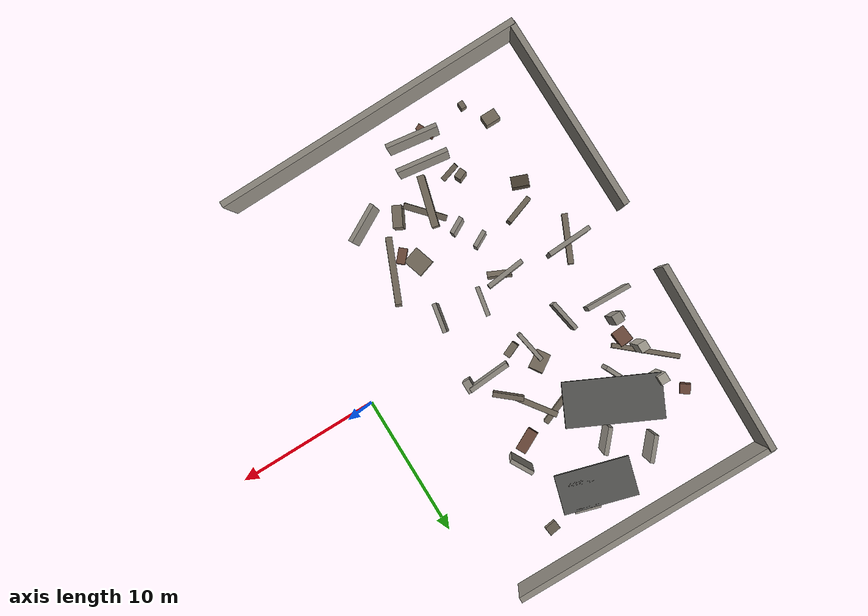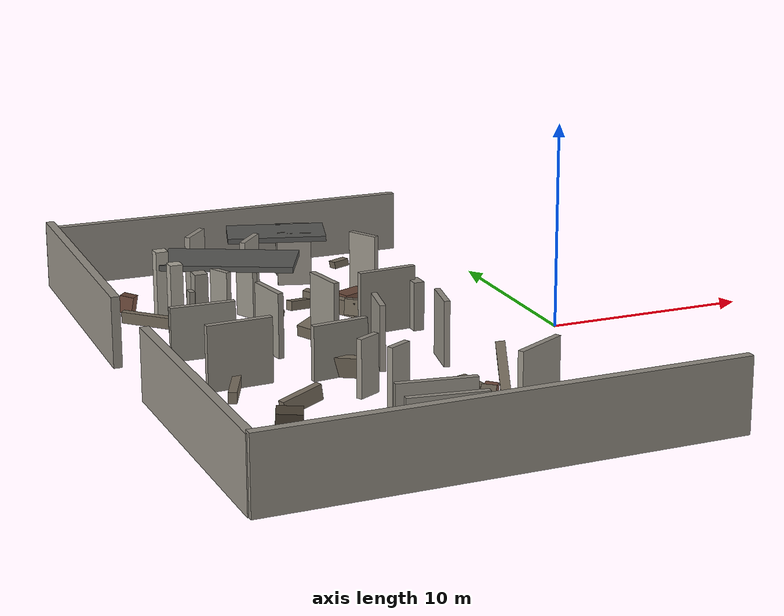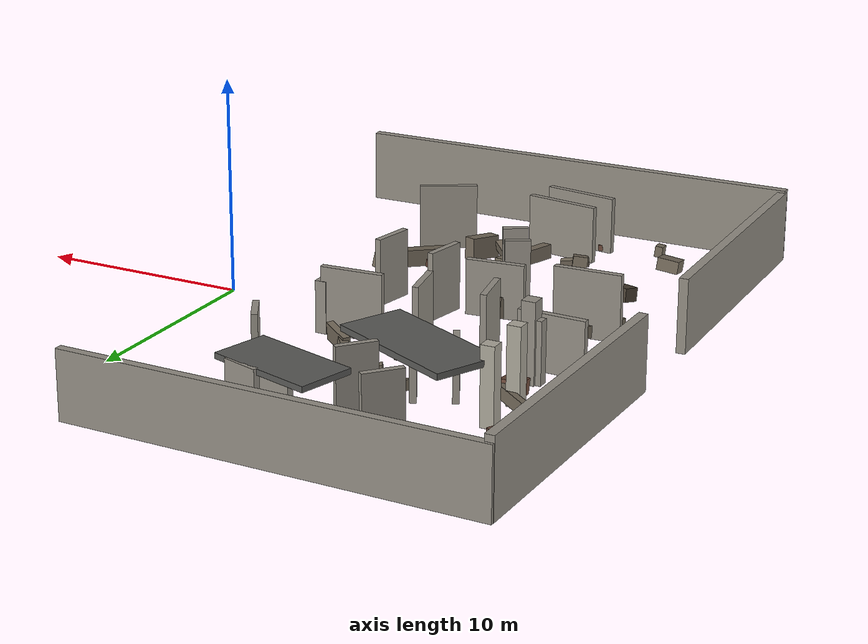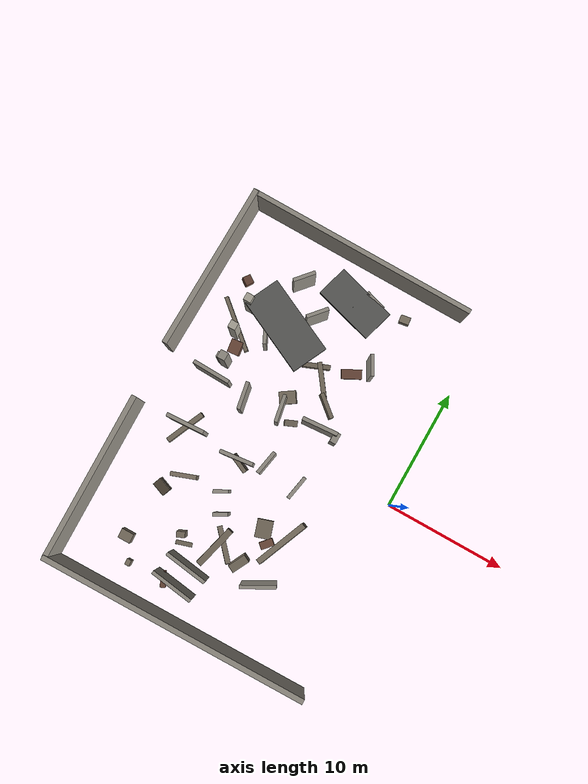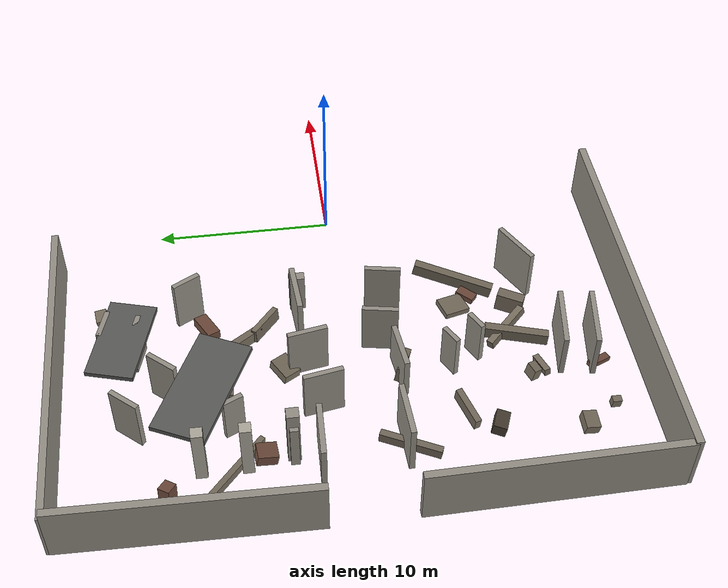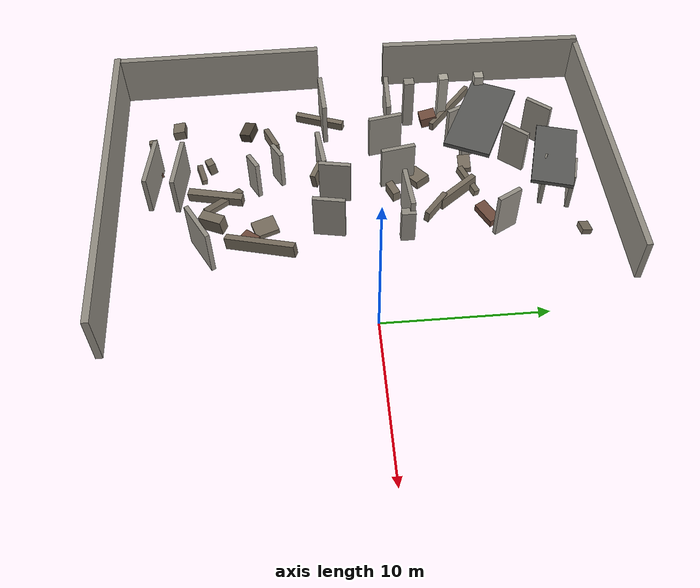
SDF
<sdf version="1.6">
 <model name="ruins_urban_01_medium">
  <static>true</static>
  <link name="001_north_boundary_west">
   <pose>-11.50000 15.85000 1.55000 0.00000 0.00000 -0.01000</pose>
   <visual name="visual">
    <geometry><box><size>19.00000 0.38000 3.10000</size></box></geometry>
    <material>
     <ambient>0.580 0.560 0.520 1</ambient>
     <diffuse>0.580 0.560 0.520 1</diffuse>
     <specular>0.03 0.03 0.03 1</specular>
    </material>
   </visual>
   <collision name="collision">
    <geometry><box><size>19.00000 0.38000 3.10000</size></box></geometry>
    <surface>
     <contact><collide_bitmask>0x01</collide_bitmask></contact>
     <friction><ode><mu>1.0</mu><mu2>1.0</mu2></ode></friction>
    </surface>
   </collision>
  </link>
  <link name="003_south_boundary_west">
   <pose>-10.00000 -15.90000 1.75000 0.00000 0.00000 0.01200</pose>
   <visual name="visual">
    <geometry><box><size>22.00000 0.42000 3.50000</size></box></geometry>
    <material>
     <ambient>0.580 0.560 0.520 1</ambient>
     <diffuse>0.580 0.560 0.520 1</diffuse>
     <specular>0.03 0.03 0.03 1</specular>
    </material>
   </visual>
   <collision name="collision">
    <geometry><box><size>22.00000 0.42000 3.50000</size></box></geometry>
    <surface>
     <contact><collide_bitmask>0x01</collide_bitmask></contact>
     <friction><ode><mu>1.0</mu><mu2>1.0</mu2></ode></friction>
    </surface>
   </collision>
  </link>
  <link name="005_west_boundary_north">
   <pose>-20.95000 9.15000 1.70000 0.00000 0.00000 -0.02000</pose>
   <visual name="visual">
    <geometry><box><size>0.42000 13.70000 3.40000</size></box></geometry>
    <material>
     <ambient>0.580 0.560 0.520 1</ambient>
     <diffuse>0.580 0.560 0.520 1</diffuse>
     <specular>0.03 0.03 0.03 1</specular>
    </material>
   </visual>
   <collision name="collision">
    <geometry><box><size>0.42000 13.70000 3.40000</size></box></geometry>
    <surface>
     <contact><collide_bitmask>0x01</collide_bitmask></contact>
     <friction><ode><mu>1.0</mu><mu2>1.0</mu2></ode></friction>
    </surface>
   </collision>
  </link>
  <link name="006_west_boundary_south">
   <pose>-20.95000 -9.15000 1.70000 0.00000 0.00000 0.01500</pose>
   <visual name="visual">
    <geometry><box><size>0.42000 13.70000 3.40000</size></box></geometry>
    <material>
     <ambient>0.580 0.560 0.520 1</ambient>
     <diffuse>0.580 0.560 0.520 1</diffuse>
     <specular>0.03 0.03 0.03 1</specular>
    </material>
   </visual>
   <collision name="collision">
    <geometry><box><size>0.42000 13.70000 3.40000</size></box></geometry>
    <surface>
     <contact><collide_bitmask>0x01</collide_bitmask></contact>
     <friction><ode><mu>1.0</mu><mu2>1.0</mu2></ode></friction>
    </surface>
   </collision>
  </link>
  <link name="008_ground_corridor_g2_n1_left">
   <pose>-13.96680 1.73807 1.57500 0.00000 0.00000 1.74751</pose>
   <visual name="visual">
    <geometry><box><size>2.18859 0.28000 3.15000</size></box></geometry>
    <material>
     <ambient>0.580 0.560 0.520 1</ambient>
     <diffuse>0.580 0.560 0.520 1</diffuse>
     <specular>0.03 0.03 0.03 1</specular>
    </material>
   </visual>
   <collision name="collision">
    <geometry><box><size>2.18859 0.28000 3.15000</size></box></geometry>
    <surface>
     <contact><collide_bitmask>0x01</collide_bitmask></contact>
     <friction><ode><mu>1.0</mu><mu2>1.0</mu2></ode></friction>
    </surface>
   </collision>
  </link>
  <link name="009_ground_corridor_g2_n1_right">
   <pose>-11.03320 2.26193 1.57500 0.00000 0.00000 1.74751</pose>
   <visual name="visual">
    <geometry><box><size>2.18859 0.28000 3.15000</size></box></geometry>
    <material>
     <ambient>0.580 0.560 0.520 1</ambient>
     <diffuse>0.580 0.560 0.520 1</diffuse>
     <specular>0.03 0.03 0.03 1</specular>
    </material>
   </visual>
   <collision name="collision">
    <geometry><box><size>2.18859 0.28000 3.15000</size></box></geometry>
    <surface>
     <contact><collide_bitmask>0x01</collide_bitmask></contact>
     <friction><ode><mu>1.0</mu><mu2>1.0</mu2></ode></friction>
    </surface>
   </collision>
  </link>
  <link name="010_ground_corridor_n1_n2_left">
   <pose>-14.78097 6.52811 1.37500 0.00000 0.00000 2.01522</pose>
   <visual name="visual">
    <geometry><box><size>1.15188 0.28000 2.75000</size></box></geometry>
    <material>
     <ambient>0.580 0.560 0.520 1</ambient>
     <diffuse>0.580 0.560 0.520 1</diffuse>
     <specular>0.03 0.03 0.03 1</specular>
    </material>
   </visual>
   <collision name="collision">
    <geometry><box><size>1.15188 0.28000 2.75000</size></box></geometry>
    <surface>
     <contact><collide_bitmask>0x01</collide_bitmask></contact>
     <friction><ode><mu>1.0</mu><mu2>1.0</mu2></ode></friction>
    </surface>
   </collision>
  </link>
  <link name="011_ground_corridor_n1_n2_right">
   <pose>-13.21903 7.27189 1.37500 0.00000 0.00000 2.01522</pose>
   <visual name="visual">
    <geometry><box><size>1.15188 0.28000 2.75000</size></box></geometry>
    <material>
     <ambient>0.580 0.560 0.520 1</ambient>
     <diffuse>0.580 0.560 0.520 1</diffuse>
     <specular>0.03 0.03 0.03 1</specular>
    </material>
   </visual>
   <collision name="collision">
    <geometry><box><size>1.15188 0.28000 2.75000</size></box></geometry>
    <surface>
     <contact><collide_bitmask>0x01</collide_bitmask></contact>
     <friction><ode><mu>1.0</mu><mu2>1.0</mu2></ode></friction>
    </surface>
   </collision>
  </link>
  <link name="012_ground_corridor_n2_n3_left">
   <pose>-14.37134 11.98117 1.57500 0.00000 0.00000 0.85197</pose>
   <visual name="visual">
    <geometry><box><size>1.81507 0.28000 3.15000</size></box></geometry>
    <material>
     <ambient>0.580 0.560 0.520 1</ambient>
     <diffuse>0.580 0.560 0.520 1</diffuse>
     <specular>0.03 0.03 0.03 1</specular>
    </material>
   </visual>
   <collision name="collision">
    <geometry><box><size>1.81507 0.28000 3.15000</size></box></geometry>
    <surface>
     <contact><collide_bitmask>0x01</collide_bitmask></contact>
     <friction><ode><mu>1.0</mu><mu2>1.0</mu2></ode></friction>
    </surface>
   </collision>
  </link>
  <link name="013_ground_corridor_n2_n3_right">
   <pose>-12.12866 10.01883 1.57500 0.00000 0.00000 0.85197</pose>
   <visual name="visual">
    <geometry><box><size>1.81507 0.28000 3.15000</size></box></geometry>
    <material>
     <ambient>0.580 0.560 0.520 1</ambient>
     <diffuse>0.580 0.560 0.520 1</diffuse>
     <specular>0.03 0.03 0.03 1</specular>
    </material>
   </visual>
   <collision name="collision">
    <geometry><box><size>1.81507 0.28000 3.15000</size></box></geometry>
    <surface>
     <contact><collide_bitmask>0x01</collide_bitmask></contact>
     <friction><ode><mu>1.0</mu><mu2>1.0</mu2></ode></friction>
    </surface>
   </collision>
  </link>
  <link name="014_ground_corridor_n3_n4_left">
   <pose>-8.75144 13.07852 1.37500 0.00000 0.00000 -0.29146</pose>
   <visual name="visual">
    <geometry><box><size>1.72015 0.28000 2.75000</size></box></geometry>
    <material>
     <ambient>0.580 0.560 0.520 1</ambient>
     <diffuse>0.580 0.560 0.520 1</diffuse>
     <specular>0.03 0.03 0.03 1</specular>
    </material>
   </visual>
   <collision name="collision">
    <geometry><box><size>1.72015 0.28000 2.75000</size></box></geometry>
    <surface>
     <contact><collide_bitmask>0x01</collide_bitmask></contact>
     <friction><ode><mu>1.0</mu><mu2>1.0</mu2></ode></friction>
    </surface>
   </collision>
  </link>
  <link name="015_ground_corridor_n3_n4_right">
   <pose>-9.24856 11.42148 1.37500 0.00000 0.00000 -0.29146</pose>
   <visual name="visual">
    <geometry><box><size>1.72015 0.28000 2.75000</size></box></geometry>
    <material>
     <ambient>0.580 0.560 0.520 1</ambient>
     <diffuse>0.580 0.560 0.520 1</diffuse>
     <specular>0.03 0.03 0.03 1</specular>
    </material>
   </visual>
   <collision name="collision">
    <geometry><box><size>1.72015 0.28000 2.75000</size></box></geometry>
    <surface>
     <contact><collide_bitmask>0x01</collide_bitmask></contact>
     <friction><ode><mu>1.0</mu><mu2>1.0</mu2></ode></friction>
    </surface>
   </collision>
  </link>
  <link name="017_ground_corridor_n4_n5_right">
   <pose>-6.55249 8.52639 1.57500 0.00000 0.00000 -1.06370</pose>
   <visual name="visual">
    <geometry><box><size>1.64782 0.28000 3.15000</size></box></geometry>
    <material>
     <ambient>0.580 0.560 0.520 1</ambient>
     <diffuse>0.580 0.560 0.520 1</diffuse>
     <specular>0.03 0.03 0.03 1</specular>
    </material>
   </visual>
   <collision name="collision">
    <geometry><box><size>1.64782 0.28000 3.15000</size></box></geometry>
    <surface>
     <contact><collide_bitmask>0x01</collide_bitmask></contact>
     <friction><ode><mu>1.0</mu><mu2>1.0</mu2></ode></friction>
    </surface>
   </collision>
  </link>
  <link name="018_ground_corridor_g3_s1_left">
   <pose>-7.03491 -2.37131 1.57500 0.00000 0.00000 -1.75391</pose>
   <visual name="visual">
    <geometry><box><size>1.99181 0.28000 3.15000</size></box></geometry>
    <material>
     <ambient>0.580 0.560 0.520 1</ambient>
     <diffuse>0.580 0.560 0.520 1</diffuse>
     <specular>0.03 0.03 0.03 1</specular>
    </material>
   </visual>
   <collision name="collision">
    <geometry><box><size>1.99181 0.28000 3.15000</size></box></geometry>
    <surface>
     <contact><collide_bitmask>0x01</collide_bitmask></contact>
     <friction><ode><mu>1.0</mu><mu2>1.0</mu2></ode></friction>
    </surface>
   </collision>
  </link>
  <link name="019_ground_corridor_g3_s1_right">
   <pose>-9.96509 -1.82869 1.57500 0.00000 0.00000 -1.75391</pose>
   <visual name="visual">
    <geometry><box><size>1.99181 0.28000 3.15000</size></box></geometry>
    <material>
     <ambient>0.580 0.560 0.520 1</ambient>
     <diffuse>0.580 0.560 0.520 1</diffuse>
     <specular>0.03 0.03 0.03 1</specular>
    </material>
   </visual>
   <collision name="collision">
    <geometry><box><size>1.99181 0.28000 3.15000</size></box></geometry>
    <surface>
     <contact><collide_bitmask>0x01</collide_bitmask></contact>
     <friction><ode><mu>1.0</mu><mu2>1.0</mu2></ode></friction>
    </surface>
   </collision>
  </link>
  <link name="020_ground_corridor_s1_s2_left">
   <pose>-11.08900 -6.91112 1.37500 0.00000 0.00000 -2.64646</pose>
   <visual name="visual">
    <geometry><box><size>1.18243 0.28000 2.75000</size></box></geometry>
    <material>
     <ambient>0.580 0.560 0.520 1</ambient>
     <diffuse>0.580 0.560 0.520 1</diffuse>
     <specular>0.03 0.03 0.03 1</specular>
    </material>
   </visual>
   <collision name="collision">
    <geometry><box><size>1.18243 0.28000 2.75000</size></box></geometry>
    <surface>
     <contact><collide_bitmask>0x01</collide_bitmask></contact>
     <friction><ode><mu>1.0</mu><mu2>1.0</mu2></ode></friction>
    </surface>
   </collision>
  </link>
  <link name="021_ground_corridor_s1_s2_right">
   <pose>-11.91100 -5.38888 1.37500 0.00000 0.00000 -2.64646</pose>
   <visual name="visual">
    <geometry><box><size>1.18243 0.28000 2.75000</size></box></geometry>
    <material>
     <ambient>0.580 0.560 0.520 1</ambient>
     <diffuse>0.580 0.560 0.520 1</diffuse>
     <specular>0.03 0.03 0.03 1</specular>
    </material>
   </visual>
   <collision name="collision">
    <geometry><box><size>1.18243 0.28000 2.75000</size></box></geometry>
    <surface>
     <contact><collide_bitmask>0x01</collide_bitmask></contact>
     <friction><ode><mu>1.0</mu><mu2>1.0</mu2></ode></friction>
    </surface>
   </collision>
  </link>
  <link name="022_ground_corridor_s3_s4_left">
   <pose>-11.37767 -11.64369 1.37500 0.00000 0.00000 -0.14190</pose>
   <visual name="visual">
    <geometry><box><size>3.57107 0.28000 2.75000</size></box></geometry>
    <material>
     <ambient>0.580 0.560 0.520 1</ambient>
     <diffuse>0.580 0.560 0.520 1</diffuse>
     <specular>0.03 0.03 0.03 1</specular>
    </material>
   </visual>
   <collision name="collision">
    <geometry><box><size>3.57107 0.28000 2.75000</size></box></geometry>
    <surface>
     <contact><collide_bitmask>0x01</collide_bitmask></contact>
     <friction><ode><mu>1.0</mu><mu2>1.0</mu2></ode></friction>
    </surface>
   </collision>
  </link>
  <link name="023_ground_corridor_s3_s4_right">
   <pose>-11.62233 -13.35631 1.37500 0.00000 0.00000 -0.14190</pose>
   <visual name="visual">
    <geometry><box><size>3.57107 0.28000 2.75000</size></box></geometry>
    <material>
     <ambient>0.580 0.560 0.520 1</ambient>
     <diffuse>0.580 0.560 0.520 1</diffuse>
     <specular>0.03 0.03 0.03 1</specular>
    </material>
   </visual>
   <collision name="collision">
    <geometry><box><size>3.57107 0.28000 2.75000</size></box></geometry>
    <surface>
     <contact><collide_bitmask>0x01</collide_bitmask></contact>
     <friction><ode><mu>1.0</mu><mu2>1.0</mu2></ode></friction>
    </surface>
   </collision>
  </link>
  <link name="024_ground_corridor_s4_s5_left">
   <pose>-5.96349 -10.19194 1.57500 0.00000 0.00000 0.49935</pose>
   <visual name="visual">
    <geometry><box><size>2.76498 0.28000 3.15000</size></box></geometry>
    <material>
     <ambient>0.580 0.560 0.520 1</ambient>
     <diffuse>0.580 0.560 0.520 1</diffuse>
     <specular>0.03 0.03 0.03 1</specular>
    </material>
   </visual>
   <collision name="collision">
    <geometry><box><size>2.76498 0.28000 3.15000</size></box></geometry>
    <surface>
     <contact><collide_bitmask>0x01</collide_bitmask></contact>
     <friction><ode><mu>1.0</mu><mu2>1.0</mu2></ode></friction>
    </surface>
   </collision>
  </link>
  <link name="038_spine_broken_panel_00">
   <pose>-17.05000 2.20000 1.30000 0.00000 0.00000 -0.03225</pose>
   <visual name="visual">
    <geometry><box><size>3.10161 0.30000 2.60000</size></box></geometry>
    <material>
     <ambient>0.580 0.560 0.520 1</ambient>
     <diffuse>0.580 0.560 0.520 1</diffuse>
     <specular>0.03 0.03 0.03 1</specular>
    </material>
   </visual>
   <collision name="collision">
    <geometry><box><size>3.10161 0.30000 2.60000</size></box></geometry>
    <surface>
     <contact><collide_bitmask>0x01</collide_bitmask></contact>
     <friction><ode><mu>1.0</mu><mu2>1.0</mu2></ode></friction>
    </surface>
   </collision>
  </link>
  <link name="039_spine_broken_panel_02">
   <pose>-7.75000 2.55000 1.55000 0.00000 0.00000 0.06886</pose>
   <visual name="visual">
    <geometry><box><size>2.90689 0.30000 3.10000</size></box></geometry>
    <material>
     <ambient>0.580 0.560 0.520 1</ambient>
     <diffuse>0.580 0.560 0.520 1</diffuse>
     <specular>0.03 0.03 0.03 1</specular>
    </material>
   </visual>
   <collision name="collision">
    <geometry><box><size>2.90689 0.30000 3.10000</size></box></geometry>
    <surface>
     <contact><collide_bitmask>0x01</collide_bitmask></contact>
     <friction><ode><mu>1.0</mu><mu2>1.0</mu2></ode></friction>
    </surface>
   </collision>
  </link>
  <link name="044_spine_broken_panel_08">
   <pose>-16.75000 -2.22500 1.55000 0.00000 0.00000 0.04835</pose>
   <visual name="visual">
    <geometry><box><size>3.10363 0.30000 3.10000</size></box></geometry>
    <material>
     <ambient>0.580 0.560 0.520 1</ambient>
     <diffuse>0.580 0.560 0.520 1</diffuse>
     <specular>0.03 0.03 0.03 1</specular>
    </material>
   </visual>
   <collision name="collision">
    <geometry><box><size>3.10363 0.30000 3.10000</size></box></geometry>
    <surface>
     <contact><collide_bitmask>0x01</collide_bitmask></contact>
     <friction><ode><mu>1.0</mu><mu2>1.0</mu2></ode></friction>
    </surface>
   </collision>
  </link>
  <link name="045_spine_broken_panel_09">
   <pose>-12.15000 -2.60000 1.30000 0.00000 0.00000 0.11066</pose>
   <visual name="visual">
    <geometry><box><size>2.71662 0.30000 2.60000</size></box></geometry>
    <material>
     <ambient>0.580 0.560 0.520 1</ambient>
     <diffuse>0.580 0.560 0.520 1</diffuse>
     <specular>0.03 0.03 0.03 1</specular>
    </material>
   </visual>
   <collision name="collision">
    <geometry><box><size>2.71662 0.30000 2.60000</size></box></geometry>
    <surface>
     <contact><collide_bitmask>0x01</collide_bitmask></contact>
     <friction><ode><mu>1.0</mu><mu2>1.0</mu2></ode></friction>
    </surface>
   </collision>
  </link>
  <link name="050_utility_ceiling_01">
   <pose>-13.80000 8.00000 2.72000 0.00000 0.00000 -0.45000</pose>
   <visual name="visual">
    <geometry><box><size>6.50000 3.00000 0.28000</size></box></geometry>
    <material>
     <ambient>0.350 0.350 0.340 1</ambient>
     <diffuse>0.350 0.350 0.340 1</diffuse>
     <specular>0.03 0.03 0.03 1</specular>
    </material>
   </visual>
   <collision name="collision">
    <geometry><box><size>6.50000 3.00000 0.28000</size></box></geometry>
    <surface>
     <contact><collide_bitmask>0x01</collide_bitmask></contact>
     <friction><ode><mu>1.0</mu><mu2>1.0</mu2></ode></friction>
    </surface>
   </collision>
  </link>
  <link name="051_utility_ceiling_02">
   <pose>-10.00000 12.10000 2.62000 0.00000 0.00000 -0.28000</pose>
   <visual name="visual">
    <geometry><box><size>5.00000 2.60000 0.26000</size></box></geometry>
    <material>
     <ambient>0.350 0.350 0.340 1</ambient>
     <diffuse>0.350 0.350 0.340 1</diffuse>
     <specular>0.03 0.03 0.03 1</specular>
    </material>
   </visual>
   <collision name="collision">
    <geometry><box><size>5.00000 2.60000 0.26000</size></box></geometry>
    <surface>
     <contact><collide_bitmask>0x01</collide_bitmask></contact>
     <friction><ode><mu>1.0</mu><mu2>1.0</mu2></ode></friction>
    </surface>
   </collision>
  </link>
  <link name="052_fixed_column_00">
   <pose>-17.20000 6.00000 1.75000 0.00000 0.00000 0.00000</pose>
   <visual name="visual">
    <geometry><box><size>0.62000 0.62000 3.50000</size></box></geometry>
    <material>
     <ambient>0.680 0.660 0.610 1</ambient>
     <diffuse>0.680 0.660 0.610 1</diffuse>
     <specular>0.03 0.03 0.03 1</specular>
    </material>
   </visual>
   <collision name="collision">
    <geometry><box><size>0.62000 0.62000 3.50000</size></box></geometry>
    <surface>
     <contact><collide_bitmask>0x01</collide_bitmask></contact>
     <friction><ode><mu>1.0</mu><mu2>1.0</mu2></ode></friction>
    </surface>
   </collision>
  </link>
  <link name="053_fixed_column_01">
   <pose>-17.20000 8.40000 1.75000 0.00000 0.00000 0.00000</pose>
   <visual name="visual">
    <geometry><box><size>0.62000 0.62000 3.50000</size></box></geometry>
    <material>
     <ambient>0.680 0.660 0.610 1</ambient>
     <diffuse>0.680 0.660 0.610 1</diffuse>
     <specular>0.03 0.03 0.03 1</specular>
    </material>
   </visual>
   <collision name="collision">
    <geometry><box><size>0.62000 0.62000 3.50000</size></box></geometry>
    <surface>
     <contact><collide_bitmask>0x01</collide_bitmask></contact>
     <friction><ode><mu>1.0</mu><mu2>1.0</mu2></ode></friction>
    </surface>
   </collision>
  </link>
  <link name="093_medium_random_column_02">
   <pose>-16.93869 3.57772 1.42360 0.00000 0.00000 0.00000</pose>
   <visual name="visual">
    <geometry><box><size>0.70482 0.46498 2.84720</size></box></geometry>
    <material>
     <ambient>0.580 0.560 0.520 1</ambient>
     <diffuse>0.580 0.560 0.520 1</diffuse>
     <specular>0.03 0.03 0.03 1</specular>
    </material>
   </visual>
   <collision name="collision">
    <geometry><box><size>0.70482 0.46498 2.84720</size></box></geometry>
    <surface>
     <contact><collide_bitmask>0x01</collide_bitmask></contact>
     <friction><ode><mu>1.0</mu><mu2>1.0</mu2></ode></friction>
    </surface>
   </collision>
  </link>
  <link name="098_medium_random_column_07">
   <pose>-16.72560 3.60039 1.83524 0.00000 0.00000 0.00000</pose>
   <visual name="visual">
    <geometry><box><size>0.63542 0.66842 3.67047</size></box></geometry>
    <material>
     <ambient>0.580 0.560 0.520 1</ambient>
     <diffuse>0.580 0.560 0.520 1</diffuse>
     <specular>0.03 0.03 0.03 1</specular>
    </material>
   </visual>
   <collision name="collision">
    <geometry><box><size>0.63542 0.66842 3.67047</size></box></geometry>
    <surface>
     <contact><collide_bitmask>0x01</collide_bitmask></contact>
     <friction><ode><mu>1.0</mu><mu2>1.0</mu2></ode></friction>
    </surface>
   </collision>
  </link>
  <link name="099_medium_random_column_08">
   <pose>-6.31504 2.39063 1.21035 0.00000 0.00000 0.00000</pose>
   <visual name="visual">
    <geometry><box><size>0.51796 0.86785 2.42069</size></box></geometry>
    <material>
     <ambient>0.580 0.560 0.520 1</ambient>
     <diffuse>0.580 0.560 0.520 1</diffuse>
     <specular>0.03 0.03 0.03 1</specular>
    </material>
   </visual>
   <collision name="collision">
    <geometry><box><size>0.51796 0.86785 2.42069</size></box></geometry>
    <surface>
     <contact><collide_bitmask>0x01</collide_bitmask></contact>
     <friction><ode><mu>1.0</mu><mu2>1.0</mu2></ode></friction>
    </surface>
   </collision>
  </link>
  <link name="104_medium_rubble_003">
   <pose>-11.85838 -2.82477 0.49243 -0.14137 -0.03830 2.70698</pose>
   <visual name="visual">
    <geometry><box><size>1.63845 0.35689 0.98485</size></box></geometry>
    <material>
     <ambient>0.460 0.420 0.360 1</ambient>
     <diffuse>0.460 0.420 0.360 1</diffuse>
     <specular>0.03 0.03 0.03 1</specular>
    </material>
   </visual>
   <collision name="collision">
    <geometry><box><size>1.63845 0.35689 0.98485</size></box></geometry>
    <surface>
     <contact><collide_bitmask>0x01</collide_bitmask></contact>
     <friction><ode><mu>1.0</mu><mu2>1.0</mu2></ode></friction>
    </surface>
   </collision>
  </link>
  <link name="107_medium_rubble_006">
   <pose>-12.13976 6.87817 0.22743 0.12518 -0.15222 1.48786</pose>
   <visual name="visual">
    <geometry><box><size>0.81404 1.15641 0.45487</size></box></geometry>
    <material>
     <ambient>0.460 0.420 0.360 1</ambient>
     <diffuse>0.460 0.420 0.360 1</diffuse>
     <specular>0.03 0.03 0.03 1</specular>
    </material>
   </visual>
   <collision name="collision">
    <geometry><box><size>0.81404 1.15641 0.45487</size></box></geometry>
    <surface>
     <contact><collide_bitmask>0x01</collide_bitmask></contact>
     <friction><ode><mu>1.0</mu><mu2>1.0</mu2></ode></friction>
    </surface>
   </collision>
  </link>
  <link name="109_medium_rubble_008">
   <pose>-6.93082 -7.29824 0.17242 -0.07717 -0.03730 2.42600</pose>
   <visual name="visual">
    <geometry><box><size>0.60339 1.08006 0.34484</size></box></geometry>
    <material>
     <ambient>0.430 0.290 0.230 1</ambient>
     <diffuse>0.430 0.290 0.230 1</diffuse>
     <specular>0.03 0.03 0.03 1</specular>
    </material>
   </visual>
   <collision name="collision">
    <geometry><box><size>0.60339 1.08006 0.34484</size></box></geometry>
    <surface>
     <contact><collide_bitmask>0x01</collide_bitmask></contact>
     <friction><ode><mu>1.0</mu><mu2>1.0</mu2></ode></friction>
    </surface>
   </collision>
  </link>
  <link name="117_medium_rubble_016">
   <pose>-12.65509 -13.61475 0.13843 0.04492 -0.10638 2.01976</pose>
   <visual name="visual">
    <geometry><box><size>1.30079 0.42683 0.27686</size></box></geometry>
    <material>
     <ambient>0.430 0.290 0.230 1</ambient>
     <diffuse>0.430 0.290 0.230 1</diffuse>
     <specular>0.03 0.03 0.03 1</specular>
    </material>
   </visual>
   <collision name="collision">
    <geometry><box><size>1.30079 0.42683 0.27686</size></box></geometry>
    <surface>
     <contact><collide_bitmask>0x01</collide_bitmask></contact>
     <friction><ode><mu>1.0</mu><mu2>1.0</mu2></ode></friction>
    </surface>
   </collision>
  </link>
  <link name="118_medium_rubble_017">
   <pose>-9.90853 1.86870 0.39607 0.07894 0.09066 0.40895</pose>
   <visual name="visual">
    <geometry><box><size>1.02283 0.48749 0.79214</size></box></geometry>
    <material>
     <ambient>0.460 0.420 0.360 1</ambient>
     <diffuse>0.460 0.420 0.360 1</diffuse>
     <specular>0.03 0.03 0.03 1</specular>
    </material>
   </visual>
   <collision name="collision">
    <geometry><box><size>1.02283 0.48749 0.79214</size></box></geometry>
    <surface>
     <contact><collide_bitmask>0x01</collide_bitmask></contact>
     <friction><ode><mu>1.0</mu><mu2>1.0</mu2></ode></friction>
    </surface>
   </collision>
  </link>
  <link name="123_medium_rubble_022">
   <pose>-8.09589 -9.58371 0.53431 0.07177 -0.06237 1.09927</pose>
   <visual name="visual">
    <geometry><box><size>1.50853 0.67239 1.06863</size></box></geometry>
    <material>
     <ambient>0.460 0.420 0.360 1</ambient>
     <diffuse>0.460 0.420 0.360 1</diffuse>
     <specular>0.03 0.03 0.03 1</specular>
    </material>
   </visual>
   <collision name="collision">
    <geometry><box><size>1.50853 0.67239 1.06863</size></box></geometry>
    <surface>
     <contact><collide_bitmask>0x01</collide_bitmask></contact>
     <friction><ode><mu>1.0</mu><mu2>1.0</mu2></ode></friction>
    </surface>
   </collision>
  </link>
  <link name="124_medium_rubble_023">
   <pose>-11.09262 3.54859 0.28201 0.07566 -0.15492 0.57102</pose>
   <visual name="visual">
    <geometry><box><size>1.33886 1.02614 0.56402</size></box></geometry>
    <material>
     <ambient>0.460 0.420 0.360 1</ambient>
     <diffuse>0.460 0.420 0.360 1</diffuse>
     <specular>0.03 0.03 0.03 1</specular>
    </material>
   </visual>
   <collision name="collision">
    <geometry><box><size>1.33886 1.02614 0.56402</size></box></geometry>
    <surface>
     <contact><collide_bitmask>0x01</collide_bitmask></contact>
     <friction><ode><mu>1.0</mu><mu2>1.0</mu2></ode></friction>
    </surface>
   </collision>
  </link>
  <link name="125_medium_rubble_024">
   <pose>-18.44382 10.15596 0.43780 0.15297 0.07016 0.96647</pose>
   <visual name="visual">
    <geometry><box><size>0.66206 0.70038 0.87561</size></box></geometry>
    <material>
     <ambient>0.430 0.290 0.230 1</ambient>
     <diffuse>0.430 0.290 0.230 1</diffuse>
     <specular>0.03 0.03 0.03 1</specular>
    </material>
   </visual>
   <collision name="collision">
    <geometry><box><size>0.66206 0.70038 0.87561</size></box></geometry>
    <surface>
     <contact><collide_bitmask>0x01</collide_bitmask></contact>
     <friction><ode><mu>1.0</mu><mu2>1.0</mu2></ode></friction>
    </surface>
   </collision>
  </link>
  <link name="129_medium_rubble_028">
   <pose>-16.66562 5.03627 0.34448 -0.04706 -0.17884 1.66192</pose>
   <visual name="visual">
    <geometry><box><size>1.10829 0.95410 0.68897</size></box></geometry>
    <material>
     <ambient>0.430 0.290 0.230 1</ambient>
     <diffuse>0.430 0.290 0.230 1</diffuse>
     <specular>0.03 0.03 0.03 1</specular>
    </material>
   </visual>
   <collision name="collision">
    <geometry><box><size>1.10829 0.95410 0.68897</size></box></geometry>
    <surface>
     <contact><collide_bitmask>0x01</collide_bitmask></contact>
     <friction><ode><mu>1.0</mu><mu2>1.0</mu2></ode></friction>
    </surface>
   </collision>
  </link>
  <link name="131_medium_rubble_030">
   <pose>-16.79746 -12.04286 0.29935 0.12328 -0.09924 0.02156</pose>
   <visual name="visual">
    <geometry><box><size>1.05449 0.79006 0.59870</size></box></geometry>
    <material>
     <ambient>0.460 0.420 0.360 1</ambient>
     <diffuse>0.460 0.420 0.360 1</diffuse>
     <specular>0.03 0.03 0.03 1</specular>
    </material>
   </visual>
   <collision name="collision">
    <geometry><box><size>1.05449 0.79006 0.59870</size></box></geometry>
    <surface>
     <contact><collide_bitmask>0x01</collide_bitmask></contact>
     <friction><ode><mu>1.0</mu><mu2>1.0</mu2></ode></friction>
    </surface>
   </collision>
  </link>
  <link name="132_medium_rubble_031">
   <pose>-13.10219 -9.82628 0.39870 -0.11306 -0.11869 1.98965</pose>
   <visual name="visual">
    <geometry><box><size>0.48661 0.68686 0.79740</size></box></geometry>
    <material>
     <ambient>0.460 0.420 0.360 1</ambient>
     <diffuse>0.460 0.420 0.360 1</diffuse>
     <specular>0.03 0.03 0.03 1</specular>
    </material>
   </visual>
   <collision name="collision">
    <geometry><box><size>0.48661 0.68686 0.79740</size></box></geometry>
    <surface>
     <contact><collide_bitmask>0x01</collide_bitmask></contact>
     <friction><ode><mu>1.0</mu><mu2>1.0</mu2></ode></friction>
    </surface>
   </collision>
  </link>
  <link name="135_medium_rubble_034">
   <pose>-5.98738 13.50771 0.17863 -0.13088 -0.12328 0.11950</pose>
   <visual name="visual">
    <geometry><box><size>0.81638 0.64190 0.35726</size></box></geometry>
    <material>
     <ambient>0.460 0.420 0.360 1</ambient>
     <diffuse>0.460 0.420 0.360 1</diffuse>
     <specular>0.03 0.03 0.03 1</specular>
    </material>
   </visual>
   <collision name="collision">
    <geometry><box><size>0.81638 0.64190 0.35726</size></box></geometry>
    <surface>
     <contact><collide_bitmask>0x01</collide_bitmask></contact>
     <friction><ode><mu>1.0</mu><mu2>1.0</mu2></ode></friction>
    </surface>
   </collision>
  </link>
  <link name="138_medium_rubble_037">
   <pose>-7.67990 -6.38503 0.16587 -0.01576 -0.07577 1.87779</pose>
   <visual name="visual">
    <geometry><box><size>1.47299 1.26985 0.33174</size></box></geometry>
    <material>
     <ambient>0.460 0.420 0.360 1</ambient>
     <diffuse>0.460 0.420 0.360 1</diffuse>
     <specular>0.03 0.03 0.03 1</specular>
    </material>
   </visual>
   <collision name="collision">
    <geometry><box><size>1.47299 1.26985 0.33174</size></box></geometry>
    <surface>
     <contact><collide_bitmask>0x01</collide_bitmask></contact>
     <friction><ode><mu>1.0</mu><mu2>1.0</mu2></ode></friction>
    </surface>
   </collision>
  </link>
  <link name="143_medium_rubble_042">
   <pose>-16.26555 -7.36130 0.32339 -0.15875 -0.04509 2.77346</pose>
   <visual name="visual">
    <geometry><box><size>1.18964 0.75532 0.64678</size></box></geometry>
    <material>
     <ambient>0.290 0.250 0.200 1</ambient>
     <diffuse>0.290 0.250 0.200 1</diffuse>
     <specular>0.03 0.03 0.03 1</specular>
    </material>
   </visual>
   <collision name="collision">
    <geometry><box><size>1.18964 0.75532 0.64678</size></box></geometry>
    <surface>
     <contact><collide_bitmask>0x01</collide_bitmask></contact>
     <friction><ode><mu>1.0</mu><mu2>1.0</mu2></ode></friction>
    </surface>
   </collision>
  </link>
  <link name="144_medium_rubble_043">
   <pose>-12.60352 -10.42339 0.20234 -0.09733 0.14024 0.28098</pose>
   <visual name="visual">
    <geometry><box><size>1.32514 0.34390 0.40468</size></box></geometry>
    <material>
     <ambient>0.460 0.420 0.360 1</ambient>
     <diffuse>0.460 0.420 0.360 1</diffuse>
     <specular>0.03 0.03 0.03 1</specular>
    </material>
   </visual>
   <collision name="collision">
    <geometry><box><size>1.32514 0.34390 0.40468</size></box></geometry>
    <surface>
     <contact><collide_bitmask>0x01</collide_bitmask></contact>
     <friction><ode><mu>1.0</mu><mu2>1.0</mu2></ode></friction>
    </surface>
   </collision>
  </link>
  <link name="145_medium_rubble_044">
   <pose>-7.60623 7.62908 0.25991 0.08851 0.04087 0.47875</pose>
   <visual name="visual">
    <geometry><box><size>1.61940 0.75157 0.51983</size></box></geometry>
    <material>
     <ambient>0.430 0.290 0.230 1</ambient>
     <diffuse>0.430 0.290 0.230 1</diffuse>
     <specular>0.03 0.03 0.03 1</specular>
    </material>
   </visual>
   <collision name="collision">
    <geometry><box><size>1.61940 0.75157 0.51983</size></box></geometry>
    <surface>
     <contact><collide_bitmask>0x01</collide_bitmask></contact>
     <friction><ode><mu>1.0</mu><mu2>1.0</mu2></ode></friction>
    </surface>
   </collision>
  </link>
  <link name="146_medium_rubble_045">
   <pose>-15.62269 -13.76407 0.26961 -0.10144 -0.04863 1.60768</pose>
   <visual name="visual">
    <geometry><box><size>0.50840 0.37872 0.53922</size></box></geometry>
    <material>
     <ambient>0.460 0.420 0.360 1</ambient>
     <diffuse>0.460 0.420 0.360 1</diffuse>
     <specular>0.03 0.03 0.03 1</specular>
    </material>
   </visual>
   <collision name="collision">
    <geometry><box><size>0.50840 0.37872 0.53922</size></box></geometry>
    <surface>
     <contact><collide_bitmask>0x01</collide_bitmask></contact>
     <friction><ode><mu>1.0</mu><mu2>1.0</mu2></ode></friction>
    </surface>
   </collision>
  </link>
  <link name="153_medium_collapsed_wall_00">
   <pose>-10.34145 6.81186 0.44994 -0.03062 0.11811 0.39198</pose>
   <visual name="visual">
    <geometry><box><size>2.19832 0.37928 0.46659</size></box></geometry>
    <material>
     <ambient>0.460 0.420 0.360 1</ambient>
     <diffuse>0.460 0.420 0.360 1</diffuse>
     <specular>0.03 0.03 0.03 1</specular>
    </material>
   </visual>
   <collision name="collision">
    <geometry><box><size>2.19832 0.37928 0.46659</size></box></geometry>
    <surface>
     <contact><collide_bitmask>0x01</collide_bitmask></contact>
     <friction><ode><mu>1.0</mu><mu2>1.0</mu2></ode></friction>
    </surface>
   </collision>
  </link>
  <link name="154_medium_collapsed_wall_01">
   <pose>-17.50061 6.65100 0.41145 -0.06937 -0.03041 2.42919</pose>
   <visual name="visual">
    <geometry><box><size>4.59337 0.31019 0.56942</size></box></geometry>
    <material>
     <ambient>0.460 0.420 0.360 1</ambient>
     <diffuse>0.460 0.420 0.360 1</diffuse>
     <specular>0.03 0.03 0.03 1</specular>
    </material>
   </visual>
   <collision name="collision">
    <geometry><box><size>4.59337 0.31019 0.56942</size></box></geometry>
    <surface>
     <contact><collide_bitmask>0x01</collide_bitmask></contact>
     <friction><ode><mu>1.0</mu><mu2>1.0</mu2></ode></friction>
    </surface>
   </collision>
  </link>
  <link name="155_medium_collapsed_wall_02">
   <pose>-5.92547 -6.66791 0.56735 -0.11263 -0.17013 1.18705</pose>
   <visual name="visual">
    <geometry><box><size>4.63859 0.44677 0.82831</size></box></geometry>
    <material>
     <ambient>0.460 0.420 0.360 1</ambient>
     <diffuse>0.460 0.420 0.360 1</diffuse>
     <specular>0.03 0.03 0.03 1</specular>
    </material>
   </visual>
   <collision name="collision">
    <geometry><box><size>4.63859 0.44677 0.82831</size></box></geometry>
    <surface>
     <contact><collide_bitmask>0x01</collide_bitmask></contact>
     <friction><ode><mu>1.0</mu><mu2>1.0</mu2></ode></friction>
    </surface>
   </collision>
  </link>
  <link name="156_medium_collapsed_wall_03">
   <pose>-8.10943 4.38116 0.64043 0.07710 -0.00561 2.44093</pose>
   <visual name="visual">
    <geometry><box><size>2.09540 0.33235 0.80734</size></box></geometry>
    <material>
     <ambient>0.460 0.420 0.360 1</ambient>
     <diffuse>0.460 0.420 0.360 1</diffuse>
     <specular>0.03 0.03 0.03 1</specular>
    </material>
   </visual>
   <collision name="collision">
    <geometry><box><size>2.09540 0.33235 0.80734</size></box></geometry>
    <surface>
     <contact><collide_bitmask>0x01</collide_bitmask></contact>
     <friction><ode><mu>1.0</mu><mu2>1.0</mu2></ode></friction>
    </surface>
   </collision>
  </link>
  <link name="159_medium_collapsed_wall_06">
   <pose>-10.35126 -9.46380 0.37524 0.05102 -0.04327 1.31099</pose>
   <visual name="visual">
    <geometry><box><size>3.56892 0.50386 0.68000</size></box></geometry>
    <material>
     <ambient>0.460 0.420 0.360 1</ambient>
     <diffuse>0.460 0.420 0.360 1</diffuse>
     <specular>0.03 0.03 0.03 1</specular>
    </material>
   </visual>
   <collision name="collision">
    <geometry><box><size>3.56892 0.50386 0.68000</size></box></geometry>
    <surface>
     <contact><collide_bitmask>0x01</collide_bitmask></contact>
     <friction><ode><mu>1.0</mu><mu2>1.0</mu2></ode></friction>
    </surface>
   </collision>
  </link>
  <link name="160_medium_collapsed_wall_07">
   <pose>-9.34024 5.94683 0.58685 -0.08157 -0.05757 2.20596</pose>
   <visual name="visual">
    <geometry><box><size>3.01681 0.37883 0.79476</size></box></geometry>
    <material>
     <ambient>0.460 0.420 0.360 1</ambient>
     <diffuse>0.460 0.420 0.360 1</diffuse>
     <specular>0.03 0.03 0.03 1</specular>
    </material>
   </visual>
   <collision name="collision">
    <geometry><box><size>3.01681 0.37883 0.79476</size></box></geometry>
    <surface>
     <contact><collide_bitmask>0x01</collide_bitmask></contact>
     <friction><ode><mu>1.0</mu><mu2>1.0</mu2></ode></friction>
    </surface>
   </collision>
  </link>
  <link name="161_medium_collapsed_wall_08">
   <pose>-16.98956 -2.45514 0.31794 0.02608 -0.06588 1.14532</pose>
   <visual name="visual">
    <geometry><box><size>3.39074 0.39579 0.56164</size></box></geometry>
    <material>
     <ambient>0.460 0.420 0.360 1</ambient>
     <diffuse>0.460 0.420 0.360 1</diffuse>
     <specular>0.03 0.03 0.03 1</specular>
    </material>
   </visual>
   <collision name="collision">
    <geometry><box><size>3.39074 0.39579 0.56164</size></box></geometry>
    <surface>
     <contact><collide_bitmask>0x01</collide_bitmask></contact>
     <friction><ode><mu>1.0</mu><mu2>1.0</mu2></ode></friction>
    </surface>
   </collision>
  </link>
  <link name="164_medium_collapsed_wall_11">
   <pose>-15.17345 -5.79801 0.38239 -0.00684 -0.15364 0.34368</pose>
   <visual name="visual">
    <geometry><box><size>2.13791 0.35402 0.74547</size></box></geometry>
    <material>
     <ambient>0.460 0.420 0.360 1</ambient>
     <diffuse>0.460 0.420 0.360 1</diffuse>
     <specular>0.03 0.03 0.03 1</specular>
    </material>
   </visual>
   <collision name="collision">
    <geometry><box><size>2.13791 0.35402 0.74547</size></box></geometry>
    <surface>
     <contact><collide_bitmask>0x01</collide_bitmask></contact>
     <friction><ode><mu>1.0</mu><mu2>1.0</mu2></ode></friction>
    </surface>
   </collision>
  </link>
  <link name="166_medium_collapsed_wall_13">
   <pose>-9.80840 -8.99616 0.40763 0.12632 0.14930 2.31840</pose>
   <visual name="visual">
    <geometry><box><size>2.98935 0.40631 0.46971</size></box></geometry>
    <material>
     <ambient>0.460 0.420 0.360 1</ambient>
     <diffuse>0.460 0.420 0.360 1</diffuse>
     <specular>0.03 0.03 0.03 1</specular>
    </material>
   </visual>
   <collision name="collision">
    <geometry><box><size>2.98935 0.40631 0.46971</size></box></geometry>
    <surface>
     <contact><collide_bitmask>0x01</collide_bitmask></contact>
     <friction><ode><mu>1.0</mu><mu2>1.0</mu2></ode></friction>
    </surface>
   </collision>
  </link>
 </model>
</sdf>
